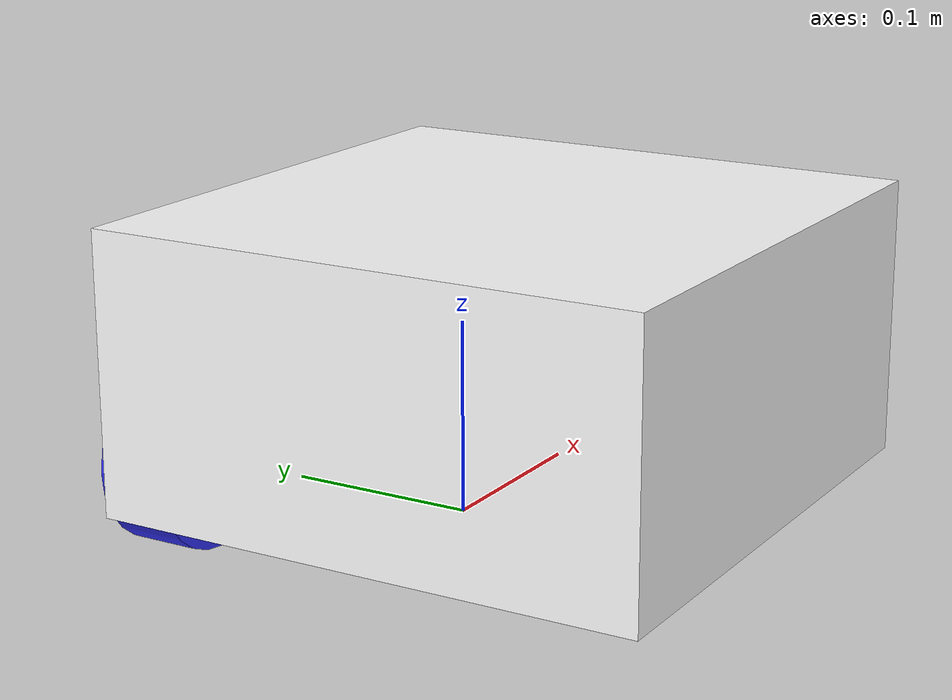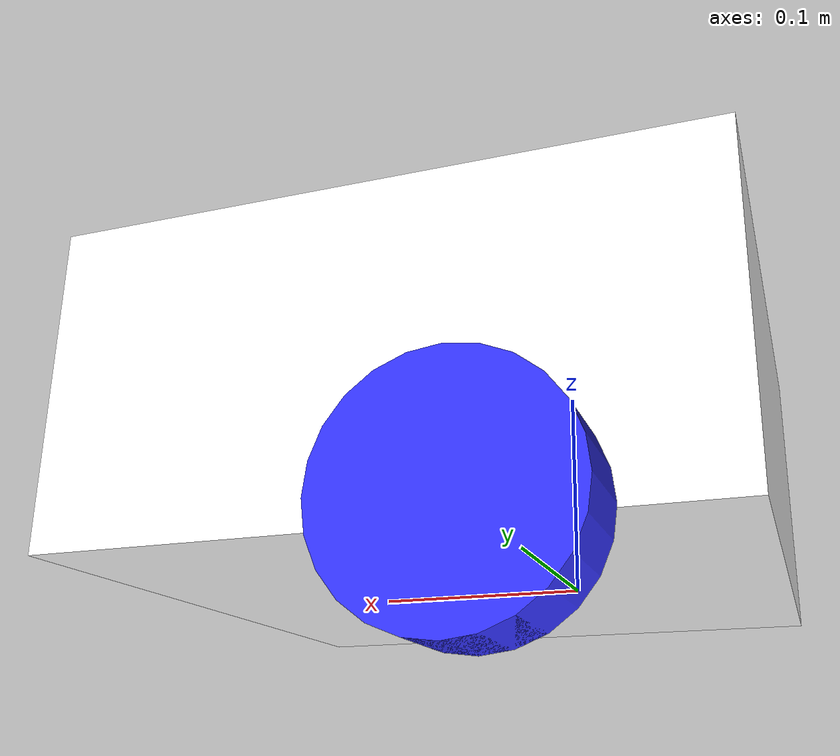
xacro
<?xml version="1.0"?>
<robot xmlns:xacro="http://www.ros.org/wiki/xacro" >

    <material name="white">
        <color rgba="1 1 1 1" />
    </material>

    <material name="orange">
        <color rgba="1 0.3 0.1 1" />
    </material>

    <material name="blue">
        <color rgba="0.2 0.2 1 1" />
    </material>

    <material name="black">
        <color rgba="0 0 0 1" />
    </material>

    <!-- BASE LINK-->

    <link name="base_link">
    </link>

    <!-- CHASSIS LINK-->

    <joint name="chassis_joint" type="fixed">
        <parent link="base_link" />
        <child link="chassis"/>
        <origin xyz="-0.1 0 0"/>
    </joint>

    <link name="chassis">
        <visual>
            <origin xyz="0.15 0 0.075"/>
            <geometry>
                <box size="0.3 0.3 0.15"/>
            </geometry>
            <material name="white"/>
        </visual>
    </link>

<!-- LEFT WHEEL LINK-->

    <joint name="left_wheel_joint" type="continuous">
        <parent link="base_link"/>
        <child link="left_wheel"/>
        <origin xyz="0 0.175 0" rpy="-${pi/2} 0 0"/>
        <axis xyz="0 0 1"/>
    </joint>

    <link name="left_wheel">
        <visual>
            <geometry>
                <cylinder radius="0.05" length="0.04"/>
            </geometry>
            <material name="blue"/>
        </visual>
    </link>

 <!--RIGHT WHEEL LINK-->

    <joint name="right_wheel_joint" type="continuous">
        <parent link="base_link"/>
        <child link="right_wheel"/>
        <origin xyz="0 0.175 0" rpy="${pi/2} 0 0"/>
        <axis xyz="0 0 -1"/>
    </joint>

    <link name="right_wheel">
        <visual>
            <geometry>
                <cylinder radius="0.05" length="0.04"/>
            </geometry>
            <material name="blue"/>
        </visual>
    </link>

</robot>
